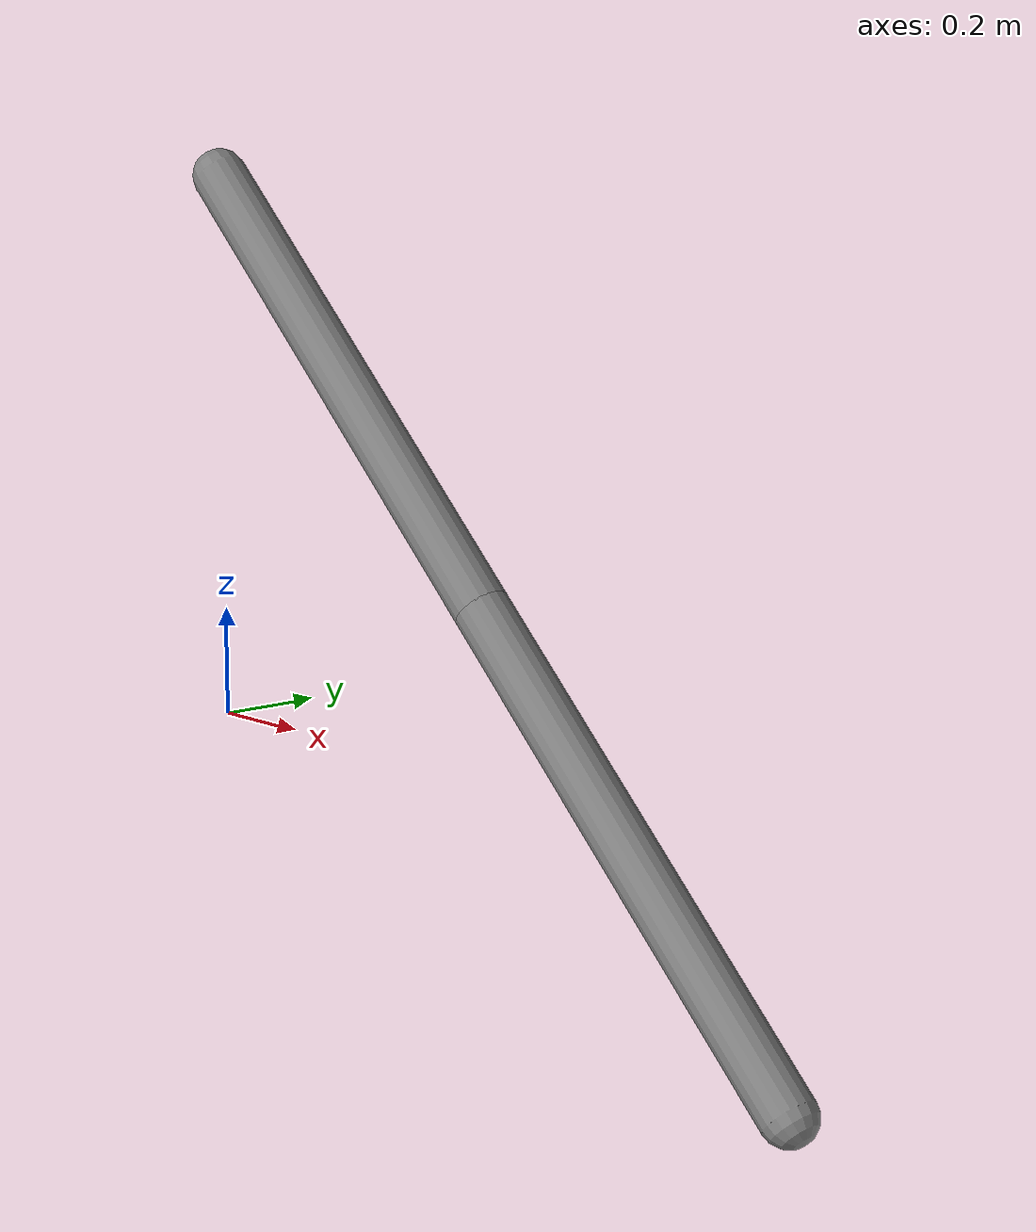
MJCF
<mujoco>
<option gravity="0 0 -9.81" timestep="0.001"/>
<worldbody>
   <body pos="0 0 1" euler="0 45 0">
    <joint type="hinge" axis="0 1 0" range="-180 180" />
    <geom type="capsule" fromto="0 0 0 1 0 0" size="0.05" />
      <body pos="1 0 0">
      <joint type="hinge" axis="0 1 0" range="-180 180" />
      <geom type="capsule" fromto="0 0 0 1 0 0" size="0.05" />
      </body>
   </body>
</worldbody>

<sensor>
   <e_potential/>
   <e_kinetic/>
</sensor>

</mujoco>
